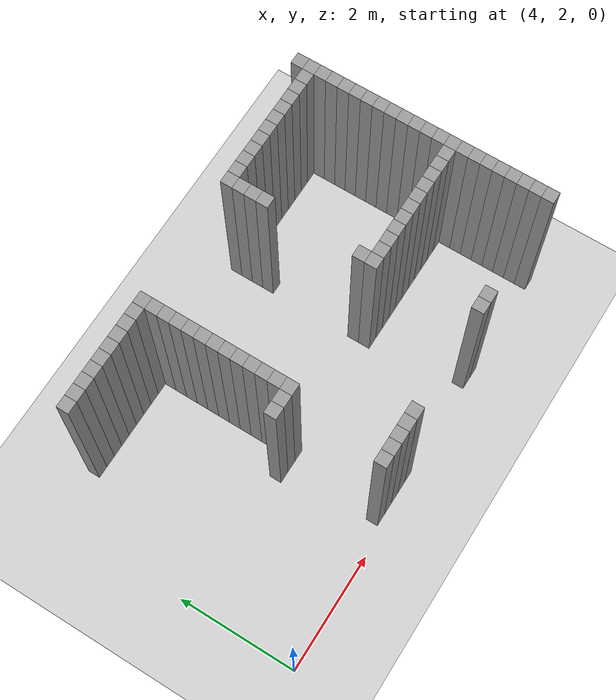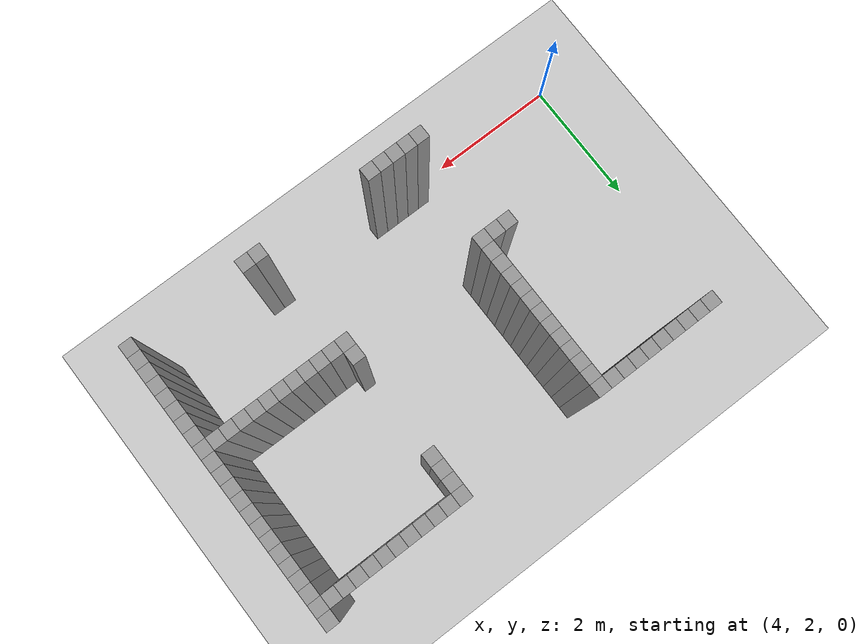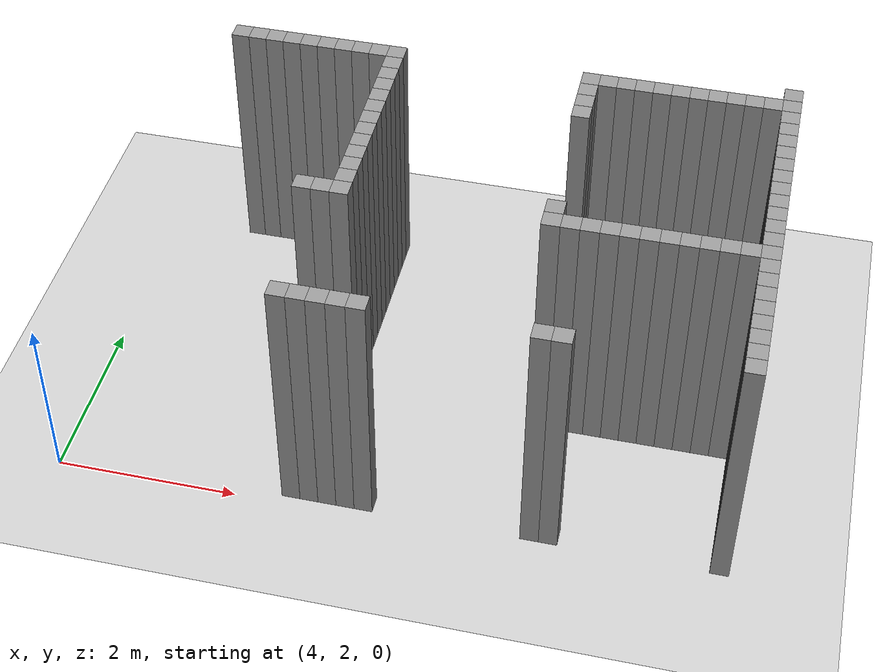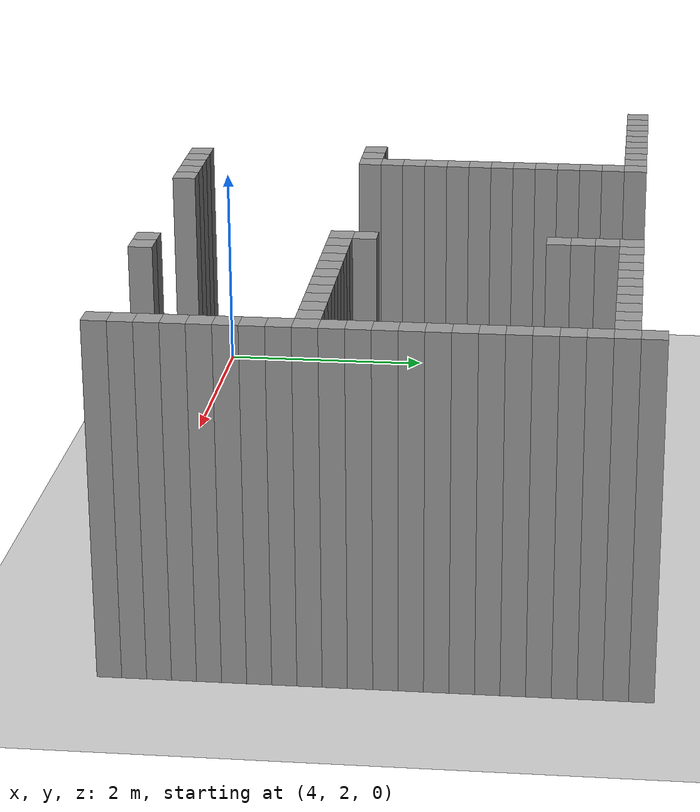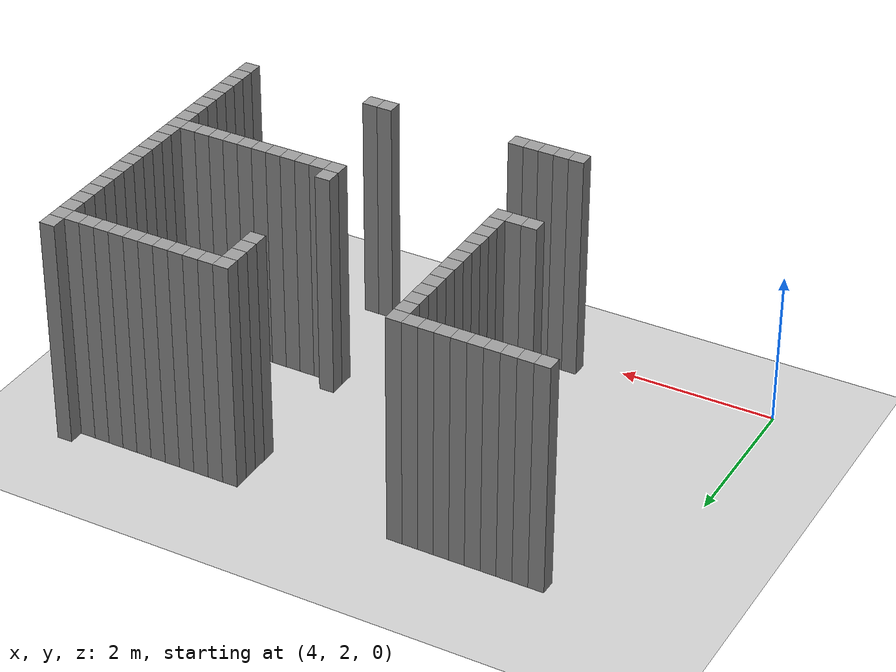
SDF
<sdf version="1.7">
 <world name="default">
  <model name="ground_plane">
   <static>1</static>
   <link name="link">
    <collision name="collision">
     <geometry><plane><normal>0 0 1</normal><size>100 100</size></plane></geometry>
     <surface>
      <contact><collide_bitmask>65535</collide_bitmask></contact>
      <friction><ode><mu>100</mu><mu2>50</mu2></ode></friction>
     </surface>
    </collision>
    <visual name="visual">
     <cast_shadows>0</cast_shadows>
     <geometry><plane><normal>0 0 1</normal><size>100 100</size></plane></geometry>
     <material>
      <script><uri>file://media/materials/scripts/gazebo.material</uri><name>Gazebo/Grey</name></script>
     </material>
    </visual>
   </link>
  </model>
  <model name="image49974">
   <pose>-1 -1 0 0 -0 0</pose>
   <link name="Wall_242">
    <collision name="Wall_242_Collision">
     <geometry><box><size>0.2 0.2 3</size></box></geometry>
     <pose>0 0 1.5 0 -0 0</pose>
    </collision>
    <visual name="Wall_242_Visual">
     <pose>0 0 1.5 0 -0 0</pose>
     <geometry><box><size>0.2 0.2 3</size></box></geometry>
     <material>
      <script><uri>file://media/materials/scripts/gazebo.material</uri><name>Gazebo/Grey</name></script>
      <ambient>1 1 1 1</ambient>
     </material>
     <meta><layer>0</layer></meta>
    </visual>
    <pose>6.0 7.2 0 0 -0 0</pose>
   </link>
   <link name="Wall_246">
    <collision name="Wall_246_Collision">
     <geometry><box><size>0.2 0.2 3</size></box></geometry>
     <pose>0 0 1.5 0 -0 0</pose>
    </collision>
    <visual name="Wall_246_Visual">
     <pose>0 0 1.5 0 -0 0</pose>
     <geometry><box><size>0.2 0.2 3</size></box></geometry>
     <material>
      <script><uri>file://media/materials/scripts/gazebo.material</uri><name>Gazebo/Grey</name></script>
      <ambient>1 1 1 1</ambient>
     </material>
     <meta><layer>0</layer></meta>
    </visual>
    <pose>6.2 7.2 0 0 -0 0</pose>
   </link>
   <link name="Wall_250">
    <collision name="Wall_250_Collision">
     <geometry><box><size>0.2 0.2 3</size></box></geometry>
     <pose>0 0 1.5 0 -0 0</pose>
    </collision>
    <visual name="Wall_250_Visual">
     <pose>0 0 1.5 0 -0 0</pose>
     <geometry><box><size>0.2 0.2 3</size></box></geometry>
     <material>
      <script><uri>file://media/materials/scripts/gazebo.material</uri><name>Gazebo/Grey</name></script>
      <ambient>1 1 1 1</ambient>
     </material>
     <meta><layer>0</layer></meta>
    </visual>
    <pose>6.4 7.2 0 0 -0 0</pose>
   </link>
   <link name="Wall_254">
    <collision name="Wall_254_Collision">
     <geometry><box><size>0.2 0.2 3</size></box></geometry>
     <pose>0 0 1.5 0 -0 0</pose>
    </collision>
    <visual name="Wall_254_Visual">
     <pose>0 0 1.5 0 -0 0</pose>
     <geometry><box><size>0.2 0.2 3</size></box></geometry>
     <material>
      <script><uri>file://media/materials/scripts/gazebo.material</uri><name>Gazebo/Grey</name></script>
      <ambient>1 1 1 1</ambient>
     </material>
     <meta><layer>0</layer></meta>
    </visual>
    <pose>6.6000000000000005 7.2 0 0 -0 0</pose>
   </link>
   <link name="Wall_258">
    <collision name="Wall_258_Collision">
     <geometry><box><size>0.2 0.2 3</size></box></geometry>
     <pose>0 0 1.5 0 -0 0</pose>
    </collision>
    <visual name="Wall_258_Visual">
     <pose>0 0 1.5 0 -0 0</pose>
     <geometry><box><size>0.2 0.2 3</size></box></geometry>
     <material>
      <script><uri>file://media/materials/scripts/gazebo.material</uri><name>Gazebo/Grey</name></script>
      <ambient>1 1 1 1</ambient>
     </material>
     <meta><layer>0</layer></meta>
    </visual>
    <pose>6.800000000000001 7.2 0 0 -0 0</pose>
   </link>
   <link name="Wall_262">
    <collision name="Wall_262_Collision">
     <geometry><box><size>0.2 0.2 3</size></box></geometry>
     <pose>0 0 1.5 0 -0 0</pose>
    </collision>
    <visual name="Wall_262_Visual">
     <pose>0 0 1.5 0 -0 0</pose>
     <geometry><box><size>0.2 0.2 3</size></box></geometry>
     <material>
      <script><uri>file://media/materials/scripts/gazebo.material</uri><name>Gazebo/Grey</name></script>
      <ambient>1 1 1 1</ambient>
     </material>
     <meta><layer>0</layer></meta>
    </visual>
    <pose>7.0 7.2 0 0 -0 0</pose>
   </link>
   <link name="Wall_281">
    <collision name="Wall_281_Collision">
     <geometry><box><size>0.2 0.2 3</size></box></geometry>
     <pose>0 0 1.5 0 -0 0</pose>
    </collision>
    <visual name="Wall_281_Visual">
     <pose>0 0 1.5 0 -0 0</pose>
     <geometry><box><size>0.2 0.2 3</size></box></geometry>
     <material>
      <script><uri>file://media/materials/scripts/gazebo.material</uri><name>Gazebo/Grey</name></script>
      <ambient>1 1 1 1</ambient>
     </material>
     <meta><layer>0</layer></meta>
    </visual>
    <pose>7.2 7.2 0 0 -0 0</pose>
   </link>
   <link name="Wall_285">
    <collision name="Wall_285_Collision">
     <geometry><box><size>0.2 0.2 3</size></box></geometry>
     <pose>0 0 1.5 0 -0 0</pose>
    </collision>
    <visual name="Wall_285_Visual">
     <pose>0 0 1.5 0 -0 0</pose>
     <geometry><box><size>0.2 0.2 3</size></box></geometry>
     <material>
      <script><uri>file://media/materials/scripts/gazebo.material</uri><name>Gazebo/Grey</name></script>
      <ambient>1 1 1 1</ambient>
     </material>
     <meta><layer>0</layer></meta>
    </visual>
    <pose>7.4 4.800000000000001 0 0 -0 0</pose>
   </link>
   <link name="Wall_286">
    <collision name="Wall_286_Collision">
     <geometry><box><size>0.2 0.2 3</size></box></geometry>
     <pose>0 0 1.5 0 -0 0</pose>
    </collision>
    <visual name="Wall_286_Visual">
     <pose>0 0 1.5 0 -0 0</pose>
     <geometry><box><size>0.2 0.2 3</size></box></geometry>
     <material>
      <script><uri>file://media/materials/scripts/gazebo.material</uri><name>Gazebo/Grey</name></script>
      <ambient>1 1 1 1</ambient>
     </material>
     <meta><layer>0</layer></meta>
    </visual>
    <pose>7.4 7.2 0 0 -0 0</pose>
   </link>
   <link name="Wall_289">
    <collision name="Wall_289_Collision">
     <geometry><box><size>0.2 0.2 3</size></box></geometry>
     <pose>0 0 1.5 0 -0 0</pose>
    </collision>
    <visual name="Wall_289_Visual">
     <pose>0 0 1.5 0 -0 0</pose>
     <geometry><box><size>0.2 0.2 3</size></box></geometry>
     <material>
      <script><uri>file://media/materials/scripts/gazebo.material</uri><name>Gazebo/Grey</name></script>
      <ambient>1 1 1 1</ambient>
     </material>
     <meta><layer>0</layer></meta>
    </visual>
    <pose>7.6000000000000005 3.2 0 0 -0 0</pose>
   </link>
   <link name="Wall_290">
    <collision name="Wall_290_Collision">
     <geometry><box><size>0.2 0.2 3</size></box></geometry>
     <pose>0 0 1.5 0 -0 0</pose>
    </collision>
    <visual name="Wall_290_Visual">
     <pose>0 0 1.5 0 -0 0</pose>
     <geometry><box><size>0.2 0.2 3</size></box></geometry>
     <material>
      <script><uri>file://media/materials/scripts/gazebo.material</uri><name>Gazebo/Grey</name></script>
      <ambient>1 1 1 1</ambient>
     </material>
     <meta><layer>0</layer></meta>
    </visual>
    <pose>7.6000000000000005 4.800000000000001 0 0 -0 0</pose>
   </link>
   <link name="Wall_291">
    <collision name="Wall_291_Collision">
     <geometry><box><size>0.2 0.2 3</size></box></geometry>
     <pose>0 0 1.5 0 -0 0</pose>
    </collision>
    <visual name="Wall_291_Visual">
     <pose>0 0 1.5 0 -0 0</pose>
     <geometry><box><size>0.2 0.2 3</size></box></geometry>
     <material>
      <script><uri>file://media/materials/scripts/gazebo.material</uri><name>Gazebo/Grey</name></script>
      <ambient>1 1 1 1</ambient>
     </material>
     <meta><layer>0</layer></meta>
    </visual>
    <pose>7.6000000000000005 7.2 0 0 -0 0</pose>
   </link>
   <link name="Wall_294">
    <collision name="Wall_294_Collision">
     <geometry><box><size>0.2 0.2 3</size></box></geometry>
     <pose>0 0 1.5 0 -0 0</pose>
    </collision>
    <visual name="Wall_294_Visual">
     <pose>0 0 1.5 0 -0 0</pose>
     <geometry><box><size>0.2 0.2 3</size></box></geometry>
     <material>
      <script><uri>file://media/materials/scripts/gazebo.material</uri><name>Gazebo/Grey</name></script>
      <ambient>1 1 1 1</ambient>
     </material>
     <meta><layer>0</layer></meta>
    </visual>
    <pose>7.800000000000001 3.2 0 0 -0 0</pose>
   </link>
   <link name="Wall_295">
    <collision name="Wall_295_Collision">
     <geometry><box><size>0.2 0.2 3</size></box></geometry>
     <pose>0 0 1.5 0 -0 0</pose>
    </collision>
    <visual name="Wall_295_Visual">
     <pose>0 0 1.5 0 -0 0</pose>
     <geometry><box><size>0.2 0.2 3</size></box></geometry>
     <material>
      <script><uri>file://media/materials/scripts/gazebo.material</uri><name>Gazebo/Grey</name></script>
      <ambient>1 1 1 1</ambient>
     </material>
     <meta><layer>0</layer></meta>
    </visual>
    <pose>7.800000000000001 4.800000000000001 0 0 -0 0</pose>
   </link>
   <link name="Wall_296">
    <collision name="Wall_296_Collision">
     <geometry><box><size>0.2 0.2 3</size></box></geometry>
     <pose>0 0 1.5 0 -0 0</pose>
    </collision>
    <visual name="Wall_296_Visual">
     <pose>0 0 1.5 0 -0 0</pose>
     <geometry><box><size>0.2 0.2 3</size></box></geometry>
     <material>
      <script><uri>file://media/materials/scripts/gazebo.material</uri><name>Gazebo/Grey</name></script>
      <ambient>1 1 1 1</ambient>
     </material>
     <meta><layer>0</layer></meta>
    </visual>
    <pose>7.800000000000001 5.0 0 0 -0 0</pose>
   </link>
   <link name="Wall_297">
    <collision name="Wall_297_Collision">
     <geometry><box><size>0.2 0.2 3</size></box></geometry>
     <pose>0 0 1.5 0 -0 0</pose>
    </collision>
    <visual name="Wall_297_Visual">
     <pose>0 0 1.5 0 -0 0</pose>
     <geometry><box><size>0.2 0.2 3</size></box></geometry>
     <material>
      <script><uri>file://media/materials/scripts/gazebo.material</uri><name>Gazebo/Grey</name></script>
      <ambient>1 1 1 1</ambient>
     </material>
     <meta><layer>0</layer></meta>
    </visual>
    <pose>7.800000000000001 5.2 0 0 -0 0</pose>
   </link>
   <link name="Wall_298">
    <collision name="Wall_298_Collision">
     <geometry><box><size>0.2 0.2 3</size></box></geometry>
     <pose>0 0 1.5 0 -0 0</pose>
    </collision>
    <visual name="Wall_298_Visual">
     <pose>0 0 1.5 0 -0 0</pose>
     <geometry><box><size>0.2 0.2 3</size></box></geometry>
     <material>
      <script><uri>file://media/materials/scripts/gazebo.material</uri><name>Gazebo/Grey</name></script>
      <ambient>1 1 1 1</ambient>
     </material>
     <meta><layer>0</layer></meta>
    </visual>
    <pose>7.800000000000001 5.4 0 0 -0 0</pose>
   </link>
   <link name="Wall_299">
    <collision name="Wall_299_Collision">
     <geometry><box><size>0.2 0.2 3</size></box></geometry>
     <pose>0 0 1.5 0 -0 0</pose>
    </collision>
    <visual name="Wall_299_Visual">
     <pose>0 0 1.5 0 -0 0</pose>
     <geometry><box><size>0.2 0.2 3</size></box></geometry>
     <material>
      <script><uri>file://media/materials/scripts/gazebo.material</uri><name>Gazebo/Grey</name></script>
      <ambient>1 1 1 1</ambient>
     </material>
     <meta><layer>0</layer></meta>
    </visual>
    <pose>7.800000000000001 5.6000000000000005 0 0 -0 0</pose>
   </link>
   <link name="Wall_300">
    <collision name="Wall_300_Collision">
     <geometry><box><size>0.2 0.2 3</size></box></geometry>
     <pose>0 0 1.5 0 -0 0</pose>
    </collision>
    <visual name="Wall_300_Visual">
     <pose>0 0 1.5 0 -0 0</pose>
     <geometry><box><size>0.2 0.2 3</size></box></geometry>
     <material>
      <script><uri>file://media/materials/scripts/gazebo.material</uri><name>Gazebo/Grey</name></script>
      <ambient>1 1 1 1</ambient>
     </material>
     <meta><layer>0</layer></meta>
    </visual>
    <pose>7.800000000000001 5.800000000000001 0 0 -0 0</pose>
   </link>
   <link name="Wall_301">
    <collision name="Wall_301_Collision">
     <geometry><box><size>0.2 0.2 3</size></box></geometry>
     <pose>0 0 1.5 0 -0 0</pose>
    </collision>
    <visual name="Wall_301_Visual">
     <pose>0 0 1.5 0 -0 0</pose>
     <geometry><box><size>0.2 0.2 3</size></box></geometry>
     <material>
      <script><uri>file://media/materials/scripts/gazebo.material</uri><name>Gazebo/Grey</name></script>
      <ambient>1 1 1 1</ambient>
     </material>
     <meta><layer>0</layer></meta>
    </visual>
    <pose>7.800000000000001 6.0 0 0 -0 0</pose>
   </link>
   <link name="Wall_302">
    <collision name="Wall_302_Collision">
     <geometry><box><size>0.2 0.2 3</size></box></geometry>
     <pose>0 0 1.5 0 -0 0</pose>
    </collision>
    <visual name="Wall_302_Visual">
     <pose>0 0 1.5 0 -0 0</pose>
     <geometry><box><size>0.2 0.2 3</size></box></geometry>
     <material>
      <script><uri>file://media/materials/scripts/gazebo.material</uri><name>Gazebo/Grey</name></script>
      <ambient>1 1 1 1</ambient>
     </material>
     <meta><layer>0</layer></meta>
    </visual>
    <pose>7.800000000000001 6.2 0 0 -0 0</pose>
   </link>
   <link name="Wall_303">
    <collision name="Wall_303_Collision">
     <geometry><box><size>0.2 0.2 3</size></box></geometry>
     <pose>0 0 1.5 0 -0 0</pose>
    </collision>
    <visual name="Wall_303_Visual">
     <pose>0 0 1.5 0 -0 0</pose>
     <geometry><box><size>0.2 0.2 3</size></box></geometry>
     <material>
      <script><uri>file://media/materials/scripts/gazebo.material</uri><name>Gazebo/Grey</name></script>
      <ambient>1 1 1 1</ambient>
     </material>
     <meta><layer>0</layer></meta>
    </visual>
    <pose>7.800000000000001 6.4 0 0 -0 0</pose>
   </link>
   <link name="Wall_304">
    <collision name="Wall_304_Collision">
     <geometry><box><size>0.2 0.2 3</size></box></geometry>
     <pose>0 0 1.5 0 -0 0</pose>
    </collision>
    <visual name="Wall_304_Visual">
     <pose>0 0 1.5 0 -0 0</pose>
     <geometry><box><size>0.2 0.2 3</size></box></geometry>
     <material>
      <script><uri>file://media/materials/scripts/gazebo.material</uri><name>Gazebo/Grey</name></script>
      <ambient>1 1 1 1</ambient>
     </material>
     <meta><layer>0</layer></meta>
    </visual>
    <pose>7.800000000000001 6.6000000000000005 0 0 -0 0</pose>
   </link>
   <link name="Wall_305">
    <collision name="Wall_305_Collision">
     <geometry><box><size>0.2 0.2 3</size></box></geometry>
     <pose>0 0 1.5 0 -0 0</pose>
    </collision>
    <visual name="Wall_305_Visual">
     <pose>0 0 1.5 0 -0 0</pose>
     <geometry><box><size>0.2 0.2 3</size></box></geometry>
     <material>
      <script><uri>file://media/materials/scripts/gazebo.material</uri><name>Gazebo/Grey</name></script>
      <ambient>1 1 1 1</ambient>
     </material>
     <meta><layer>0</layer></meta>
    </visual>
    <pose>7.800000000000001 6.800000000000001 0 0 -0 0</pose>
   </link>
   <link name="Wall_306">
    <collision name="Wall_306_Collision">
     <geometry><box><size>0.2 0.2 3</size></box></geometry>
     <pose>0 0 1.5 0 -0 0</pose>
    </collision>
    <visual name="Wall_306_Visual">
     <pose>0 0 1.5 0 -0 0</pose>
     <geometry><box><size>0.2 0.2 3</size></box></geometry>
     <material>
      <script><uri>file://media/materials/scripts/gazebo.material</uri><name>Gazebo/Grey</name></script>
      <ambient>1 1 1 1</ambient>
     </material>
     <meta><layer>0</layer></meta>
    </visual>
    <pose>7.800000000000001 7.0 0 0 -0 0</pose>
   </link>
   <link name="Wall_307">
    <collision name="Wall_307_Collision">
     <geometry><box><size>0.2 0.2 3</size></box></geometry>
     <pose>0 0 1.5 0 -0 0</pose>
    </collision>
    <visual name="Wall_307_Visual">
     <pose>0 0 1.5 0 -0 0</pose>
     <geometry><box><size>0.2 0.2 3</size></box></geometry>
     <material>
      <script><uri>file://media/materials/scripts/gazebo.material</uri><name>Gazebo/Grey</name></script>
      <ambient>1 1 1 1</ambient>
     </material>
     <meta><layer>0</layer></meta>
    </visual>
    <pose>7.800000000000001 7.2 0 0 -0 0</pose>
   </link>
   <link name="Wall_310">
    <collision name="Wall_310_Collision">
     <geometry><box><size>0.2 0.2 3</size></box></geometry>
     <pose>0 0 1.5 0 -0 0</pose>
    </collision>
    <visual name="Wall_310_Visual">
     <pose>0 0 1.5 0 -0 0</pose>
     <geometry><box><size>0.2 0.2 3</size></box></geometry>
     <material>
      <script><uri>file://media/materials/scripts/gazebo.material</uri><name>Gazebo/Grey</name></script>
      <ambient>1 1 1 1</ambient>
     </material>
     <meta><layer>0</layer></meta>
    </visual>
    <pose>8.0 3.2 0 0 -0 0</pose>
   </link>
   <link name="Wall_313">
    <collision name="Wall_313_Collision">
     <geometry><box><size>0.2 0.2 3</size></box></geometry>
     <pose>0 0 1.5 0 -0 0</pose>
    </collision>
    <visual name="Wall_313_Visual">
     <pose>0 0 1.5 0 -0 0</pose>
     <geometry><box><size>0.2 0.2 3</size></box></geometry>
     <material>
      <script><uri>file://media/materials/scripts/gazebo.material</uri><name>Gazebo/Grey</name></script>
      <ambient>1 1 1 1</ambient>
     </material>
     <meta><layer>0</layer></meta>
    </visual>
    <pose>8.200000000000001 3.2 0 0 -0 0</pose>
   </link>
   <link name="Wall_328">
    <collision name="Wall_328_Collision">
     <geometry><box><size>0.2 0.2 3</size></box></geometry>
     <pose>0 0 1.5 0 -0 0</pose>
    </collision>
    <visual name="Wall_328_Visual">
     <pose>0 0 1.5 0 -0 0</pose>
     <geometry><box><size>0.2 0.2 3</size></box></geometry>
     <material>
      <script><uri>file://media/materials/scripts/gazebo.material</uri><name>Gazebo/Grey</name></script>
      <ambient>1 1 1 1</ambient>
     </material>
     <meta><layer>0</layer></meta>
    </visual>
    <pose>8.4 3.2 0 0 -0 0</pose>
   </link>
   <link name="Wall_346">
    <collision name="Wall_346_Collision">
     <geometry><box><size>0.2 0.2 3</size></box></geometry>
     <pose>0 0 1.5 0 -0 0</pose>
    </collision>
    <visual name="Wall_346_Visual">
     <pose>0 0 1.5 0 -0 0</pose>
     <geometry><box><size>0.2 0.2 3</size></box></geometry>
     <material>
      <script><uri>file://media/materials/scripts/gazebo.material</uri><name>Gazebo/Grey</name></script>
      <ambient>1 1 1 1</ambient>
     </material>
     <meta><layer>0</layer></meta>
    </visual>
    <pose>10.0 4.800000000000001 0 0 -0 0</pose>
   </link>
   <link name="Wall_347">
    <collision name="Wall_347_Collision">
     <geometry><box><size>0.2 0.2 3</size></box></geometry>
     <pose>0 0 1.5 0 -0 0</pose>
    </collision>
    <visual name="Wall_347_Visual">
     <pose>0 0 1.5 0 -0 0</pose>
     <geometry><box><size>0.2 0.2 3</size></box></geometry>
     <material>
      <script><uri>file://media/materials/scripts/gazebo.material</uri><name>Gazebo/Grey</name></script>
      <ambient>1 1 1 1</ambient>
     </material>
     <meta><layer>0</layer></meta>
    </visual>
    <pose>10.0 5.0 0 0 -0 0</pose>
   </link>
   <link name="Wall_348">
    <collision name="Wall_348_Collision">
     <geometry><box><size>0.2 0.2 3</size></box></geometry>
     <pose>0 0 1.5 0 -0 0</pose>
    </collision>
    <visual name="Wall_348_Visual">
     <pose>0 0 1.5 0 -0 0</pose>
     <geometry><box><size>0.2 0.2 3</size></box></geometry>
     <material>
      <script><uri>file://media/materials/scripts/gazebo.material</uri><name>Gazebo/Grey</name></script>
      <ambient>1 1 1 1</ambient>
     </material>
     <meta><layer>0</layer></meta>
    </visual>
    <pose>10.0 6.6000000000000005 0 0 -0 0</pose>
   </link>
   <link name="Wall_349">
    <collision name="Wall_349_Collision">
     <geometry><box><size>0.2 0.2 3</size></box></geometry>
     <pose>0 0 1.5 0 -0 0</pose>
    </collision>
    <visual name="Wall_349_Visual">
     <pose>0 0 1.5 0 -0 0</pose>
     <geometry><box><size>0.2 0.2 3</size></box></geometry>
     <material>
      <script><uri>file://media/materials/scripts/gazebo.material</uri><name>Gazebo/Grey</name></script>
      <ambient>1 1 1 1</ambient>
     </material>
     <meta><layer>0</layer></meta>
    </visual>
    <pose>10.0 6.800000000000001 0 0 -0 0</pose>
   </link>
   <link name="Wall_350">
    <collision name="Wall_350_Collision">
     <geometry><box><size>0.2 0.2 3</size></box></geometry>
     <pose>0 0 1.5 0 -0 0</pose>
    </collision>
    <visual name="Wall_350_Visual">
     <pose>0 0 1.5 0 -0 0</pose>
     <geometry><box><size>0.2 0.2 3</size></box></geometry>
     <material>
      <script><uri>file://media/materials/scripts/gazebo.material</uri><name>Gazebo/Grey</name></script>
      <ambient>1 1 1 1</ambient>
     </material>
     <meta><layer>0</layer></meta>
    </visual>
    <pose>10.0 7.0 0 0 -0 0</pose>
   </link>
   <link name="Wall_351">
    <collision name="Wall_351_Collision">
     <geometry><box><size>0.2 0.2 3</size></box></geometry>
     <pose>0 0 1.5 0 -0 0</pose>
    </collision>
    <visual name="Wall_351_Visual">
     <pose>0 0 1.5 0 -0 0</pose>
     <geometry><box><size>0.2 0.2 3</size></box></geometry>
     <material>
      <script><uri>file://media/materials/scripts/gazebo.material</uri><name>Gazebo/Grey</name></script>
      <ambient>1 1 1 1</ambient>
     </material>
     <meta><layer>0</layer></meta>
    </visual>
    <pose>10.0 7.2 0 0 -0 0</pose>
   </link>
   <link name="Wall_355">
    <collision name="Wall_355_Collision">
     <geometry><box><size>0.2 0.2 3</size></box></geometry>
     <pose>0 0 1.5 0 -0 0</pose>
    </collision>
    <visual name="Wall_355_Visual">
     <pose>0 0 1.5 0 -0 0</pose>
     <geometry><box><size>0.2 0.2 3</size></box></geometry>
     <material>
      <script><uri>file://media/materials/scripts/gazebo.material</uri><name>Gazebo/Grey</name></script>
      <ambient>1 1 1 1</ambient>
     </material>
     <meta><layer>0</layer></meta>
    </visual>
    <pose>10.200000000000001 3.2 0 0 -0 0</pose>
   </link>
   <link name="Wall_356">
    <collision name="Wall_356_Collision">
     <geometry><box><size>0.2 0.2 3</size></box></geometry>
     <pose>0 0 1.5 0 -0 0</pose>
    </collision>
    <visual name="Wall_356_Visual">
     <pose>0 0 1.5 0 -0 0</pose>
     <geometry><box><size>0.2 0.2 3</size></box></geometry>
     <material>
      <script><uri>file://media/materials/scripts/gazebo.material</uri><name>Gazebo/Grey</name></script>
      <ambient>1 1 1 1</ambient>
     </material>
     <meta><layer>0</layer></meta>
    </visual>
    <pose>10.200000000000001 4.800000000000001 0 0 -0 0</pose>
   </link>
   <link name="Wall_357">
    <collision name="Wall_357_Collision">
     <geometry><box><size>0.2 0.2 3</size></box></geometry>
     <pose>0 0 1.5 0 -0 0</pose>
    </collision>
    <visual name="Wall_357_Visual">
     <pose>0 0 1.5 0 -0 0</pose>
     <geometry><box><size>0.2 0.2 3</size></box></geometry>
     <material>
      <script><uri>file://media/materials/scripts/gazebo.material</uri><name>Gazebo/Grey</name></script>
      <ambient>1 1 1 1</ambient>
     </material>
     <meta><layer>0</layer></meta>
    </visual>
    <pose>10.200000000000001 7.2 0 0 -0 0</pose>
   </link>
   <link name="Wall_376">
    <collision name="Wall_376_Collision">
     <geometry><box><size>0.2 0.2 3</size></box></geometry>
     <pose>0 0 1.5 0 -0 0</pose>
    </collision>
    <visual name="Wall_376_Visual">
     <pose>0 0 1.5 0 -0 0</pose>
     <geometry><box><size>0.2 0.2 3</size></box></geometry>
     <material>
      <script><uri>file://media/materials/scripts/gazebo.material</uri><name>Gazebo/Grey</name></script>
      <ambient>1 1 1 1</ambient>
     </material>
     <meta><layer>0</layer></meta>
    </visual>
    <pose>10.4 3.2 0 0 -0 0</pose>
   </link>
   <link name="Wall_377">
    <collision name="Wall_377_Collision">
     <geometry><box><size>0.2 0.2 3</size></box></geometry>
     <pose>0 0 1.5 0 -0 0</pose>
    </collision>
    <visual name="Wall_377_Visual">
     <pose>0 0 1.5 0 -0 0</pose>
     <geometry><box><size>0.2 0.2 3</size></box></geometry>
     <material>
      <script><uri>file://media/materials/scripts/gazebo.material</uri><name>Gazebo/Grey</name></script>
      <ambient>1 1 1 1</ambient>
     </material>
     <meta><layer>0</layer></meta>
    </visual>
    <pose>10.4 4.800000000000001 0 0 -0 0</pose>
   </link>
   <link name="Wall_378">
    <collision name="Wall_378_Collision">
     <geometry><box><size>0.2 0.2 3</size></box></geometry>
     <pose>0 0 1.5 0 -0 0</pose>
    </collision>
    <visual name="Wall_378_Visual">
     <pose>0 0 1.5 0 -0 0</pose>
     <geometry><box><size>0.2 0.2 3</size></box></geometry>
     <material>
      <script><uri>file://media/materials/scripts/gazebo.material</uri><name>Gazebo/Grey</name></script>
      <ambient>1 1 1 1</ambient>
     </material>
     <meta><layer>0</layer></meta>
    </visual>
    <pose>10.4 7.2 0 0 -0 0</pose>
   </link>
   <link name="Wall_382">
    <collision name="Wall_382_Collision">
     <geometry><box><size>0.2 0.2 3</size></box></geometry>
     <pose>0 0 1.5 0 -0 0</pose>
    </collision>
    <visual name="Wall_382_Visual">
     <pose>0 0 1.5 0 -0 0</pose>
     <geometry><box><size>0.2 0.2 3</size></box></geometry>
     <material>
      <script><uri>file://media/materials/scripts/gazebo.material</uri><name>Gazebo/Grey</name></script>
      <ambient>1 1 1 1</ambient>
     </material>
     <meta><layer>0</layer></meta>
    </visual>
    <pose>10.600000000000001 4.800000000000001 0 0 -0 0</pose>
   </link>
   <link name="Wall_383">
    <collision name="Wall_383_Collision">
     <geometry><box><size>0.2 0.2 3</size></box></geometry>
     <pose>0 0 1.5 0 -0 0</pose>
    </collision>
    <visual name="Wall_383_Visual">
     <pose>0 0 1.5 0 -0 0</pose>
     <geometry><box><size>0.2 0.2 3</size></box></geometry>
     <material>
      <script><uri>file://media/materials/scripts/gazebo.material</uri><name>Gazebo/Grey</name></script>
      <ambient>1 1 1 1</ambient>
     </material>
     <meta><layer>0</layer></meta>
    </visual>
    <pose>10.600000000000001 7.2 0 0 -0 0</pose>
   </link>
   <link name="Wall_387">
    <collision name="Wall_387_Collision">
     <geometry><box><size>0.2 0.2 3</size></box></geometry>
     <pose>0 0 1.5 0 -0 0</pose>
    </collision>
    <visual name="Wall_387_Visual">
     <pose>0 0 1.5 0 -0 0</pose>
     <geometry><box><size>0.2 0.2 3</size></box></geometry>
     <material>
      <script><uri>file://media/materials/scripts/gazebo.material</uri><name>Gazebo/Grey</name></script>
      <ambient>1 1 1 1</ambient>
     </material>
     <meta><layer>0</layer></meta>
    </visual>
    <pose>10.8 4.800000000000001 0 0 -0 0</pose>
   </link>
   <link name="Wall_388">
    <collision name="Wall_388_Collision">
     <geometry><box><size>0.2 0.2 3</size></box></geometry>
     <pose>0 0 1.5 0 -0 0</pose>
    </collision>
    <visual name="Wall_388_Visual">
     <pose>0 0 1.5 0 -0 0</pose>
     <geometry><box><size>0.2 0.2 3</size></box></geometry>
     <material>
      <script><uri>file://media/materials/scripts/gazebo.material</uri><name>Gazebo/Grey</name></script>
      <ambient>1 1 1 1</ambient>
     </material>
     <meta><layer>0</layer></meta>
    </visual>
    <pose>10.8 7.2 0 0 -0 0</pose>
   </link>
   <link name="Wall_392">
    <collision name="Wall_392_Collision">
     <geometry><box><size>0.2 0.2 3</size></box></geometry>
     <pose>0 0 1.5 0 -0 0</pose>
    </collision>
    <visual name="Wall_392_Visual">
     <pose>0 0 1.5 0 -0 0</pose>
     <geometry><box><size>0.2 0.2 3</size></box></geometry>
     <material>
      <script><uri>file://media/materials/scripts/gazebo.material</uri><name>Gazebo/Grey</name></script>
      <ambient>1 1 1 1</ambient>
     </material>
     <meta><layer>0</layer></meta>
    </visual>
    <pose>11.0 4.800000000000001 0 0 -0 0</pose>
   </link>
   <link name="Wall_393">
    <collision name="Wall_393_Collision">
     <geometry><box><size>0.2 0.2 3</size></box></geometry>
     <pose>0 0 1.5 0 -0 0</pose>
    </collision>
    <visual name="Wall_393_Visual">
     <pose>0 0 1.5 0 -0 0</pose>
     <geometry><box><size>0.2 0.2 3</size></box></geometry>
     <material>
      <script><uri>file://media/materials/scripts/gazebo.material</uri><name>Gazebo/Grey</name></script>
      <ambient>1 1 1 1</ambient>
     </material>
     <meta><layer>0</layer></meta>
    </visual>
    <pose>11.0 7.2 0 0 -0 0</pose>
   </link>
   <link name="Wall_397">
    <collision name="Wall_397_Collision">
     <geometry><box><size>0.2 0.2 3</size></box></geometry>
     <pose>0 0 1.5 0 -0 0</pose>
    </collision>
    <visual name="Wall_397_Visual">
     <pose>0 0 1.5 0 -0 0</pose>
     <geometry><box><size>0.2 0.2 3</size></box></geometry>
     <material>
      <script><uri>file://media/materials/scripts/gazebo.material</uri><name>Gazebo/Grey</name></script>
      <ambient>1 1 1 1</ambient>
     </material>
     <meta><layer>0</layer></meta>
    </visual>
    <pose>11.200000000000001 4.800000000000001 0 0 -0 0</pose>
   </link>
   <link name="Wall_398">
    <collision name="Wall_398_Collision">
     <geometry><box><size>0.2 0.2 3</size></box></geometry>
     <pose>0 0 1.5 0 -0 0</pose>
    </collision>
    <visual name="Wall_398_Visual">
     <pose>0 0 1.5 0 -0 0</pose>
     <geometry><box><size>0.2 0.2 3</size></box></geometry>
     <material>
      <script><uri>file://media/materials/scripts/gazebo.material</uri><name>Gazebo/Grey</name></script>
      <ambient>1 1 1 1</ambient>
     </material>
     <meta><layer>0</layer></meta>
    </visual>
    <pose>11.200000000000001 7.2 0 0 -0 0</pose>
   </link>
   <link name="Wall_402">
    <collision name="Wall_402_Collision">
     <geometry><box><size>0.2 0.2 3</size></box></geometry>
     <pose>0 0 1.5 0 -0 0</pose>
    </collision>
    <visual name="Wall_402_Visual">
     <pose>0 0 1.5 0 -0 0</pose>
     <geometry><box><size>0.2 0.2 3</size></box></geometry>
     <material>
      <script><uri>file://media/materials/scripts/gazebo.material</uri><name>Gazebo/Grey</name></script>
      <ambient>1 1 1 1</ambient>
     </material>
     <meta><layer>0</layer></meta>
    </visual>
    <pose>11.4 4.800000000000001 0 0 -0 0</pose>
   </link>
   <link name="Wall_403">
    <collision name="Wall_403_Collision">
     <geometry><box><size>0.2 0.2 3</size></box></geometry>
     <pose>0 0 1.5 0 -0 0</pose>
    </collision>
    <visual name="Wall_403_Visual">
     <pose>0 0 1.5 0 -0 0</pose>
     <geometry><box><size>0.2 0.2 3</size></box></geometry>
     <material>
      <script><uri>file://media/materials/scripts/gazebo.material</uri><name>Gazebo/Grey</name></script>
      <ambient>1 1 1 1</ambient>
     </material>
     <meta><layer>0</layer></meta>
    </visual>
    <pose>11.4 7.2 0 0 -0 0</pose>
   </link>
   <link name="Wall_407">
    <collision name="Wall_407_Collision">
     <geometry><box><size>0.2 0.2 3</size></box></geometry>
     <pose>0 0 1.5 0 -0 0</pose>
    </collision>
    <visual name="Wall_407_Visual">
     <pose>0 0 1.5 0 -0 0</pose>
     <geometry><box><size>0.2 0.2 3</size></box></geometry>
     <material>
      <script><uri>file://media/materials/scripts/gazebo.material</uri><name>Gazebo/Grey</name></script>
      <ambient>1 1 1 1</ambient>
     </material>
     <meta><layer>0</layer></meta>
    </visual>
    <pose>11.600000000000001 4.800000000000001 0 0 -0 0</pose>
   </link>
   <link name="Wall_408">
    <collision name="Wall_408_Collision">
     <geometry><box><size>0.2 0.2 3</size></box></geometry>
     <pose>0 0 1.5 0 -0 0</pose>
    </collision>
    <visual name="Wall_408_Visual">
     <pose>0 0 1.5 0 -0 0</pose>
     <geometry><box><size>0.2 0.2 3</size></box></geometry>
     <material>
      <script><uri>file://media/materials/scripts/gazebo.material</uri><name>Gazebo/Grey</name></script>
      <ambient>1 1 1 1</ambient>
     </material>
     <meta><layer>0</layer></meta>
    </visual>
    <pose>11.600000000000001 7.2 0 0 -0 0</pose>
   </link>
   <link name="Wall_412">
    <collision name="Wall_412_Collision">
     <geometry><box><size>0.2 0.2 3</size></box></geometry>
     <pose>0 0 1.5 0 -0 0</pose>
    </collision>
    <visual name="Wall_412_Visual">
     <pose>0 0 1.5 0 -0 0</pose>
     <geometry><box><size>0.2 0.2 3</size></box></geometry>
     <material>
      <script><uri>file://media/materials/scripts/gazebo.material</uri><name>Gazebo/Grey</name></script>
      <ambient>1 1 1 1</ambient>
     </material>
     <meta><layer>0</layer></meta>
    </visual>
    <pose>11.8 4.800000000000001 0 0 -0 0</pose>
   </link>
   <link name="Wall_413">
    <collision name="Wall_413_Collision">
     <geometry><box><size>0.2 0.2 3</size></box></geometry>
     <pose>0 0 1.5 0 -0 0</pose>
    </collision>
    <visual name="Wall_413_Visual">
     <pose>0 0 1.5 0 -0 0</pose>
     <geometry><box><size>0.2 0.2 3</size></box></geometry>
     <material>
      <script><uri>file://media/materials/scripts/gazebo.material</uri><name>Gazebo/Grey</name></script>
      <ambient>1 1 1 1</ambient>
     </material>
     <meta><layer>0</layer></meta>
    </visual>
    <pose>11.8 7.2 0 0 -0 0</pose>
   </link>
   <link name="Wall_417">
    <collision name="Wall_417_Collision">
     <geometry><box><size>0.2 0.2 3</size></box></geometry>
     <pose>0 0 1.5 0 -0 0</pose>
    </collision>
    <visual name="Wall_417_Visual">
     <pose>0 0 1.5 0 -0 0</pose>
     <geometry><box><size>0.2 0.2 3</size></box></geometry>
     <material>
      <script><uri>file://media/materials/scripts/gazebo.material</uri><name>Gazebo/Grey</name></script>
      <ambient>1 1 1 1</ambient>
     </material>
     <meta><layer>0</layer></meta>
    </visual>
    <pose>12.0 4.800000000000001 0 0 -0 0</pose>
   </link>
   <link name="Wall_418">
    <collision name="Wall_418_Collision">
     <geometry><box><size>0.2 0.2 3</size></box></geometry>
     <pose>0 0 1.5 0 -0 0</pose>
    </collision>
    <visual name="Wall_418_Visual">
     <pose>0 0 1.5 0 -0 0</pose>
     <geometry><box><size>0.2 0.2 3</size></box></geometry>
     <material>
      <script><uri>file://media/materials/scripts/gazebo.material</uri><name>Gazebo/Grey</name></script>
      <ambient>1 1 1 1</ambient>
     </material>
     <meta><layer>0</layer></meta>
    </visual>
    <pose>12.0 7.2 0 0 -0 0</pose>
   </link>
   <link name="Wall_437">
    <collision name="Wall_437_Collision">
     <geometry><box><size>0.2 0.2 3</size></box></geometry>
     <pose>0 0 1.5 0 -0 0</pose>
    </collision>
    <visual name="Wall_437_Visual">
     <pose>0 0 1.5 0 -0 0</pose>
     <geometry><box><size>0.2 0.2 3</size></box></geometry>
     <material>
      <script><uri>file://media/materials/scripts/gazebo.material</uri><name>Gazebo/Grey</name></script>
      <ambient>1 1 1 1</ambient>
     </material>
     <meta><layer>0</layer></meta>
    </visual>
    <pose>12.200000000000001 3.2 0 0 -0 0</pose>
   </link>
   <link name="Wall_438">
    <collision name="Wall_438_Collision">
     <geometry><box><size>0.2 0.2 3</size></box></geometry>
     <pose>0 0 1.5 0 -0 0</pose>
    </collision>
    <visual name="Wall_438_Visual">
     <pose>0 0 1.5 0 -0 0</pose>
     <geometry><box><size>0.2 0.2 3</size></box></geometry>
     <material>
      <script><uri>file://media/materials/scripts/gazebo.material</uri><name>Gazebo/Grey</name></script>
      <ambient>1 1 1 1</ambient>
     </material>
     <meta><layer>0</layer></meta>
    </visual>
    <pose>12.200000000000001 3.4000000000000004 0 0 -0 0</pose>
   </link>
   <link name="Wall_439">
    <collision name="Wall_439_Collision">
     <geometry><box><size>0.2 0.2 3</size></box></geometry>
     <pose>0 0 1.5 0 -0 0</pose>
    </collision>
    <visual name="Wall_439_Visual">
     <pose>0 0 1.5 0 -0 0</pose>
     <geometry><box><size>0.2 0.2 3</size></box></geometry>
     <material>
      <script><uri>file://media/materials/scripts/gazebo.material</uri><name>Gazebo/Grey</name></script>
      <ambient>1 1 1 1</ambient>
     </material>
     <meta><layer>0</layer></meta>
    </visual>
    <pose>12.200000000000001 3.6 0 0 -0 0</pose>
   </link>
   <link name="Wall_440">
    <collision name="Wall_440_Collision">
     <geometry><box><size>0.2 0.2 3</size></box></geometry>
     <pose>0 0 1.5 0 -0 0</pose>
    </collision>
    <visual name="Wall_440_Visual">
     <pose>0 0 1.5 0 -0 0</pose>
     <geometry><box><size>0.2 0.2 3</size></box></geometry>
     <material>
      <script><uri>file://media/materials/scripts/gazebo.material</uri><name>Gazebo/Grey</name></script>
      <ambient>1 1 1 1</ambient>
     </material>
     <meta><layer>0</layer></meta>
    </visual>
    <pose>12.200000000000001 3.8000000000000003 0 0 -0 0</pose>
   </link>
   <link name="Wall_441">
    <collision name="Wall_441_Collision">
     <geometry><box><size>0.2 0.2 3</size></box></geometry>
     <pose>0 0 1.5 0 -0 0</pose>
    </collision>
    <visual name="Wall_441_Visual">
     <pose>0 0 1.5 0 -0 0</pose>
     <geometry><box><size>0.2 0.2 3</size></box></geometry>
     <material>
      <script><uri>file://media/materials/scripts/gazebo.material</uri><name>Gazebo/Grey</name></script>
      <ambient>1 1 1 1</ambient>
     </material>
     <meta><layer>0</layer></meta>
    </visual>
    <pose>12.200000000000001 4.0 0 0 -0 0</pose>
   </link>
   <link name="Wall_442">
    <collision name="Wall_442_Collision">
     <geometry><box><size>0.2 0.2 3</size></box></geometry>
     <pose>0 0 1.5 0 -0 0</pose>
    </collision>
    <visual name="Wall_442_Visual">
     <pose>0 0 1.5 0 -0 0</pose>
     <geometry><box><size>0.2 0.2 3</size></box></geometry>
     <material>
      <script><uri>file://media/materials/scripts/gazebo.material</uri><name>Gazebo/Grey</name></script>
      <ambient>1 1 1 1</ambient>
     </material>
     <meta><layer>0</layer></meta>
    </visual>
    <pose>12.200000000000001 4.2 0 0 -0 0</pose>
   </link>
   <link name="Wall_443">
    <collision name="Wall_443_Collision">
     <geometry><box><size>0.2 0.2 3</size></box></geometry>
     <pose>0 0 1.5 0 -0 0</pose>
    </collision>
    <visual name="Wall_443_Visual">
     <pose>0 0 1.5 0 -0 0</pose>
     <geometry><box><size>0.2 0.2 3</size></box></geometry>
     <material>
      <script><uri>file://media/materials/scripts/gazebo.material</uri><name>Gazebo/Grey</name></script>
      <ambient>1 1 1 1</ambient>
     </material>
     <meta><layer>0</layer></meta>
    </visual>
    <pose>12.200000000000001 4.4 0 0 -0 0</pose>
   </link>
   <link name="Wall_444">
    <collision name="Wall_444_Collision">
     <geometry><box><size>0.2 0.2 3</size></box></geometry>
     <pose>0 0 1.5 0 -0 0</pose>
    </collision>
    <visual name="Wall_444_Visual">
     <pose>0 0 1.5 0 -0 0</pose>
     <geometry><box><size>0.2 0.2 3</size></box></geometry>
     <material>
      <script><uri>file://media/materials/scripts/gazebo.material</uri><name>Gazebo/Grey</name></script>
      <ambient>1 1 1 1</ambient>
     </material>
     <meta><layer>0</layer></meta>
    </visual>
    <pose>12.200000000000001 4.6000000000000005 0 0 -0 0</pose>
   </link>
   <link name="Wall_445">
    <collision name="Wall_445_Collision">
     <geometry><box><size>0.2 0.2 3</size></box></geometry>
     <pose>0 0 1.5 0 -0 0</pose>
    </collision>
    <visual name="Wall_445_Visual">
     <pose>0 0 1.5 0 -0 0</pose>
     <geometry><box><size>0.2 0.2 3</size></box></geometry>
     <material>
      <script><uri>file://media/materials/scripts/gazebo.material</uri><name>Gazebo/Grey</name></script>
      <ambient>1 1 1 1</ambient>
     </material>
     <meta><layer>0</layer></meta>
    </visual>
    <pose>12.200000000000001 4.800000000000001 0 0 -0 0</pose>
   </link>
   <link name="Wall_446">
    <collision name="Wall_446_Collision">
     <geometry><box><size>0.2 0.2 3</size></box></geometry>
     <pose>0 0 1.5 0 -0 0</pose>
    </collision>
    <visual name="Wall_446_Visual">
     <pose>0 0 1.5 0 -0 0</pose>
     <geometry><box><size>0.2 0.2 3</size></box></geometry>
     <material>
      <script><uri>file://media/materials/scripts/gazebo.material</uri><name>Gazebo/Grey</name></script>
      <ambient>1 1 1 1</ambient>
     </material>
     <meta><layer>0</layer></meta>
    </visual>
    <pose>12.200000000000001 5.0 0 0 -0 0</pose>
   </link>
   <link name="Wall_447">
    <collision name="Wall_447_Collision">
     <geometry><box><size>0.2 0.2 3</size></box></geometry>
     <pose>0 0 1.5 0 -0 0</pose>
    </collision>
    <visual name="Wall_447_Visual">
     <pose>0 0 1.5 0 -0 0</pose>
     <geometry><box><size>0.2 0.2 3</size></box></geometry>
     <material>
      <script><uri>file://media/materials/scripts/gazebo.material</uri><name>Gazebo/Grey</name></script>
      <ambient>1 1 1 1</ambient>
     </material>
     <meta><layer>0</layer></meta>
    </visual>
    <pose>12.200000000000001 5.2 0 0 -0 0</pose>
   </link>
   <link name="Wall_448">
    <collision name="Wall_448_Collision">
     <geometry><box><size>0.2 0.2 3</size></box></geometry>
     <pose>0 0 1.5 0 -0 0</pose>
    </collision>
    <visual name="Wall_448_Visual">
     <pose>0 0 1.5 0 -0 0</pose>
     <geometry><box><size>0.2 0.2 3</size></box></geometry>
     <material>
      <script><uri>file://media/materials/scripts/gazebo.material</uri><name>Gazebo/Grey</name></script>
      <ambient>1 1 1 1</ambient>
     </material>
     <meta><layer>0</layer></meta>
    </visual>
    <pose>12.200000000000001 5.4 0 0 -0 0</pose>
   </link>
   <link name="Wall_449">
    <collision name="Wall_449_Collision">
     <geometry><box><size>0.2 0.2 3</size></box></geometry>
     <pose>0 0 1.5 0 -0 0</pose>
    </collision>
    <visual name="Wall_449_Visual">
     <pose>0 0 1.5 0 -0 0</pose>
     <geometry><box><size>0.2 0.2 3</size></box></geometry>
     <material>
      <script><uri>file://media/materials/scripts/gazebo.material</uri><name>Gazebo/Grey</name></script>
      <ambient>1 1 1 1</ambient>
     </material>
     <meta><layer>0</layer></meta>
    </visual>
    <pose>12.200000000000001 5.6000000000000005 0 0 -0 0</pose>
   </link>
   <link name="Wall_450">
    <collision name="Wall_450_Collision">
     <geometry><box><size>0.2 0.2 3</size></box></geometry>
     <pose>0 0 1.5 0 -0 0</pose>
    </collision>
    <visual name="Wall_450_Visual">
     <pose>0 0 1.5 0 -0 0</pose>
     <geometry><box><size>0.2 0.2 3</size></box></geometry>
     <material>
      <script><uri>file://media/materials/scripts/gazebo.material</uri><name>Gazebo/Grey</name></script>
      <ambient>1 1 1 1</ambient>
     </material>
     <meta><layer>0</layer></meta>
    </visual>
    <pose>12.200000000000001 5.800000000000001 0 0 -0 0</pose>
   </link>
   <link name="Wall_451">
    <collision name="Wall_451_Collision">
     <geometry><box><size>0.2 0.2 3</size></box></geometry>
     <pose>0 0 1.5 0 -0 0</pose>
    </collision>
    <visual name="Wall_451_Visual">
     <pose>0 0 1.5 0 -0 0</pose>
     <geometry><box><size>0.2 0.2 3</size></box></geometry>
     <material>
      <script><uri>file://media/materials/scripts/gazebo.material</uri><name>Gazebo/Grey</name></script>
      <ambient>1 1 1 1</ambient>
     </material>
     <meta><layer>0</layer></meta>
    </visual>
    <pose>12.200000000000001 6.0 0 0 -0 0</pose>
   </link>
   <link name="Wall_452">
    <collision name="Wall_452_Collision">
     <geometry><box><size>0.2 0.2 3</size></box></geometry>
     <pose>0 0 1.5 0 -0 0</pose>
    </collision>
    <visual name="Wall_452_Visual">
     <pose>0 0 1.5 0 -0 0</pose>
     <geometry><box><size>0.2 0.2 3</size></box></geometry>
     <material>
      <script><uri>file://media/materials/scripts/gazebo.material</uri><name>Gazebo/Grey</name></script>
      <ambient>1 1 1 1</ambient>
     </material>
     <meta><layer>0</layer></meta>
    </visual>
    <pose>12.200000000000001 6.2 0 0 -0 0</pose>
   </link>
   <link name="Wall_453">
    <collision name="Wall_453_Collision">
     <geometry><box><size>0.2 0.2 3</size></box></geometry>
     <pose>0 0 1.5 0 -0 0</pose>
    </collision>
    <visual name="Wall_453_Visual">
     <pose>0 0 1.5 0 -0 0</pose>
     <geometry><box><size>0.2 0.2 3</size></box></geometry>
     <material>
      <script><uri>file://media/materials/scripts/gazebo.material</uri><name>Gazebo/Grey</name></script>
      <ambient>1 1 1 1</ambient>
     </material>
     <meta><layer>0</layer></meta>
    </visual>
    <pose>12.200000000000001 6.4 0 0 -0 0</pose>
   </link>
   <link name="Wall_454">
    <collision name="Wall_454_Collision">
     <geometry><box><size>0.2 0.2 3</size></box></geometry>
     <pose>0 0 1.5 0 -0 0</pose>
    </collision>
    <visual name="Wall_454_Visual">
     <pose>0 0 1.5 0 -0 0</pose>
     <geometry><box><size>0.2 0.2 3</size></box></geometry>
     <material>
      <script><uri>file://media/materials/scripts/gazebo.material</uri><name>Gazebo/Grey</name></script>
      <ambient>1 1 1 1</ambient>
     </material>
     <meta><layer>0</layer></meta>
    </visual>
    <pose>12.200000000000001 6.6000000000000005 0 0 -0 0</pose>
   </link>
   <link name="Wall_455">
    <collision name="Wall_455_Collision">
     <geometry><box><size>0.2 0.2 3</size></box></geometry>
     <pose>0 0 1.5 0 -0 0</pose>
    </collision>
    <visual name="Wall_455_Visual">
     <pose>0 0 1.5 0 -0 0</pose>
     <geometry><box><size>0.2 0.2 3</size></box></geometry>
     <material>
      <script><uri>file://media/materials/scripts/gazebo.material</uri><name>Gazebo/Grey</name></script>
      <ambient>1 1 1 1</ambient>
     </material>
     <meta><layer>0</layer></meta>
    </visual>
    <pose>12.200000000000001 6.800000000000001 0 0 -0 0</pose>
   </link>
   <link name="Wall_456">
    <collision name="Wall_456_Collision">
     <geometry><box><size>0.2 0.2 3</size></box></geometry>
     <pose>0 0 1.5 0 -0 0</pose>
    </collision>
    <visual name="Wall_456_Visual">
     <pose>0 0 1.5 0 -0 0</pose>
     <geometry><box><size>0.2 0.2 3</size></box></geometry>
     <material>
      <script><uri>file://media/materials/scripts/gazebo.material</uri><name>Gazebo/Grey</name></script>
      <ambient>1 1 1 1</ambient>
     </material>
     <meta><layer>0</layer></meta>
    </visual>
    <pose>12.200000000000001 7.0 0 0 -0 0</pose>
   </link>
   <link name="Wall_457">
    <collision name="Wall_457_Collision">
     <geometry><box><size>0.2 0.2 3</size></box></geometry>
     <pose>0 0 1.5 0 -0 0</pose>
    </collision>
    <visual name="Wall_457_Visual">
     <pose>0 0 1.5 0 -0 0</pose>
     <geometry><box><size>0.2 0.2 3</size></box></geometry>
     <material>
      <script><uri>file://media/materials/scripts/gazebo.material</uri><name>Gazebo/Grey</name></script>
      <ambient>1 1 1 1</ambient>
     </material>
     <meta><layer>0</layer></meta>
    </visual>
    <pose>12.200000000000001 7.2 0 0 -0 0</pose>
   </link>
   <link name="Wall_458">
    <collision name="Wall_458_Collision">
     <geometry><box><size>0.2 0.2 3</size></box></geometry>
     <pose>0 0 1.5 0 -0 0</pose>
    </collision>
    <visual name="Wall_458_Visual">
     <pose>0 0 1.5 0 -0 0</pose>
     <geometry><box><size>0.2 0.2 3</size></box></geometry>
     <material>
      <script><uri>file://media/materials/scripts/gazebo.material</uri><name>Gazebo/Grey</name></script>
      <ambient>1 1 1 1</ambient>
     </material>
     <meta><layer>0</layer></meta>
    </visual>
    <pose>12.200000000000001 7.4 0 0 -0 0</pose>
   </link>
   <static>1</static>
  </model>
 </world>
</sdf>
